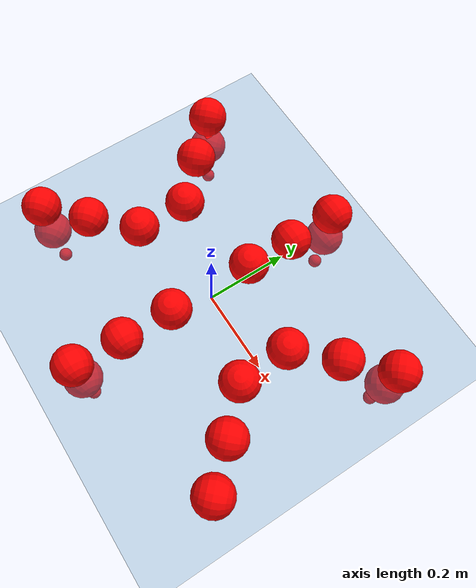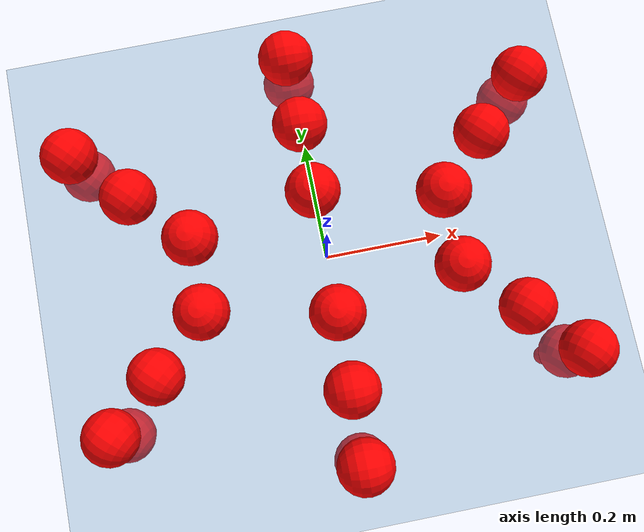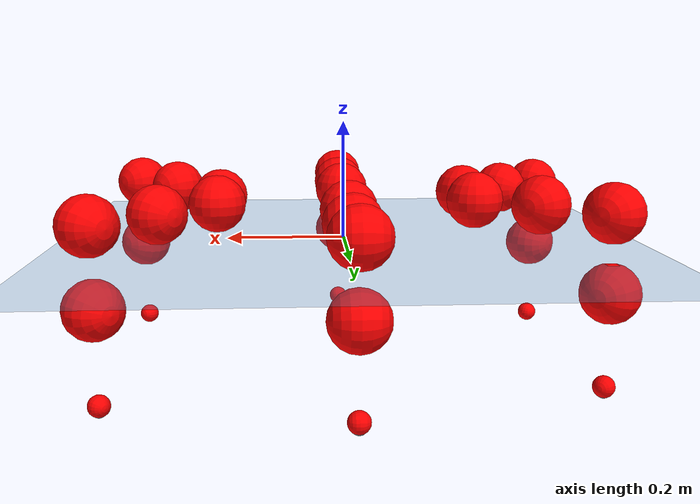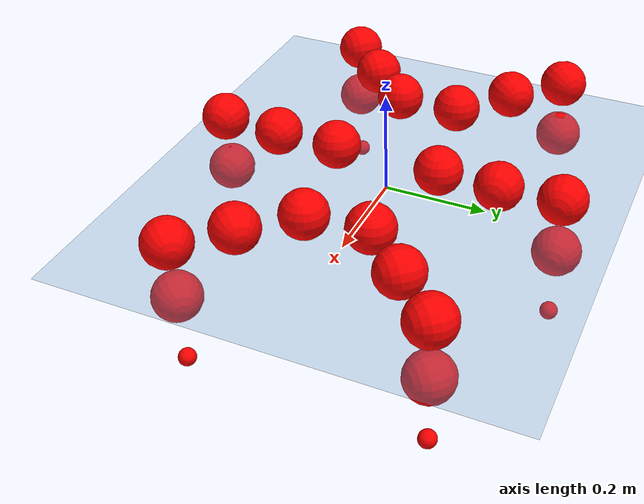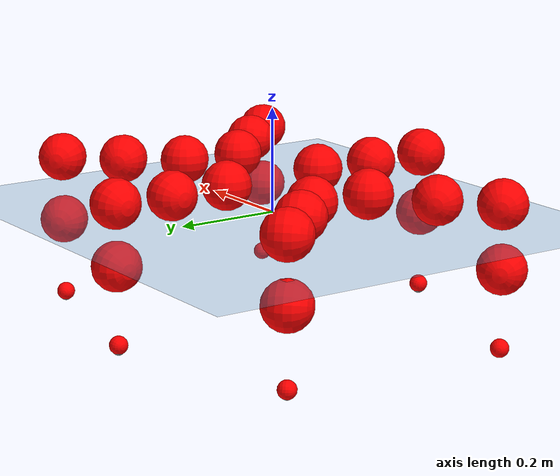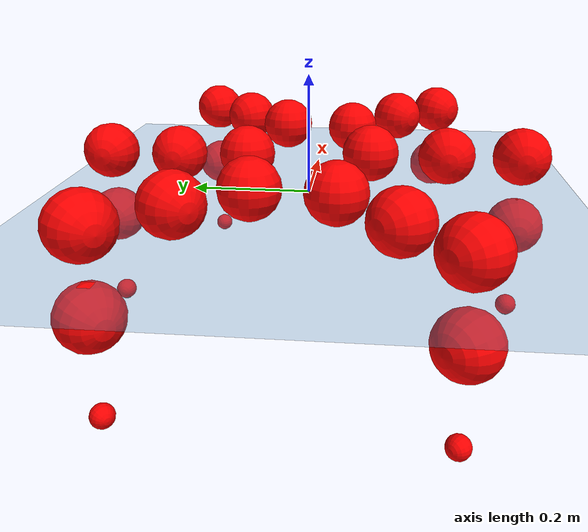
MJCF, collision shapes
<mujoco model="Golem">
  <compiler angle="radian" assetdir="assets" balanceinertia="true" inertiafromgeom="false"/>

  <option timestep="0.005" density="1.2" viscosity="2e-05"/>

  <size nkey="1"/>

  <visual>
    <quality shadowsize="8192"/>
    <map shadowclip="0.5"/>
  </visual>

  <default>
    <default class="/">
      <joint armature="0.01" damping="0.01" frictionloss="0.01"/>
      <geom contype="0" conaffinity="0" group="1" solref="-1000 -80"/>
      <site size="0.01 0.005 0.005" group="5"/>
      <general forcelimited="true" biastype="affine" gainprm="25" biasprm="0 -25 -0.5"/>
      <default class="visual">
        <geom type="mesh" group="2"/>
      </default>
      <default class="collision">
        <geom group="3"/>
      </default>
      <default class="foot">
        <geom size="0.01 0 0" condim="6" group="4" priority="1" solimp="0.015 1 0.01"/>
      </default>
      <default class="reward_collision_sphere">
        <geom group="5" rgba="1 0 0 1"/>
      </default>
    </default>
  </default>

  <asset>
    <texture type="skybox" colorspace="auto" name="//unnamed_texture_0" builtin="gradient" rgb1="0.95 0.95 0.95" rgb2="0.95 0.95 0.95" width="100" height="600"/>
    <texture type="2d" colorspace="auto" name="texplane" builtin="checker" rgb1="0.345 0.575 0.748" rgb2="0.345 0.575 0.748" markrgb="1 1 1" width="512" height="512"/>
    <material name="MatPlane" class="/" texture="texplane" texuniform="true" texrepeat="2 2" specular="0.9"/>
    <mesh name="body" class="/" file="body.stl" scale="0.001 0.001 0.001"/>
    <mesh name="coxa" class="/" file="coxa.stl" scale="0.001 0.001 0.001"/>
    <mesh name="femur" class="/" file="femur.stl" scale="0.001 0.001 0.001"/>
    <mesh name="tibia" class="/" file="tibia.stl" scale="0.001 0.001 0.001"/>
    <mesh name="tarsus" class="/" file="tarsus.stl" scale="0.001 0.001 0.001"/>
  </asset>

  <worldbody>
    <geom name="floor" class="/" size="100 100 0.125" type="plane" group="0" material="MatPlane"/>
    <light name="toplight_shadow" class="/" pos="0 0 5" dir="0.0990148 0.0990148 -0.990148" type="directional" ambient="0.04 0.04 0.04" diffuse="0.55 0.55 0.55" specular="0.12 0.12 0.12"/>
    <light name="toplight_fill" class="/" pos="0 0 5" dir="0.0990148 0.0990148 -0.990148" type="directional" castshadow="false" ambient="0.04 0.04 0.04" diffuse="0.3 0.3 0.3" specular="0.08 0.08 0.08"/>
    <body name="trunk" pos="-0.00270393 0.00123153 0.00162694" quat="1 6.41601e-05 5.38445e-05 -4.6548e-05">
      <inertial pos="0.00291259 0.00188314 -0.00433814" quat="0.999998 -0.00175062 7.79387e-05 -8.15017e-05" mass="6.21829" diaginertia="0.0510826 0.017906 0.0112904"/>
      <joint name="//unnamed_joint_0" type="free"/>
      <geom name="//unnamed_geom_1" class="/" pos="0 0 0.0654153" quat="1 0 0 0" type="mesh" rgba="0.9 0.9 0.9 1" mesh="body"/>
      <site name="imu" class="/" pos="0.1701 -0.00780288 0.115428" size="0.0117249"/>
      <camera name="track" class="/" pos="0 -2.22433 0" quat="0.707107 0.707107 0 0" mode="trackcom"/>
      <camera name="ego_camera" class="/" pos="0.179816 0 0.102211" quat="-0.5 -0.5 0.5 0.5"/>
      <body name="coxa_RR" pos="-0.245175 -0.0912411 0.0686065" quat="0.3827 5.1087e-05 -1.55243e-05 -0.923873">
        <inertial pos="0.000760589 0.0033197 -0.00221766" quat="0.999999 -7.5462e-05 -0.00126813 -0.000347348" mass="0.345286" diaginertia="0.0518256 0.0174547 0.0115081"/>
        <joint name="coxa_joint_RR" class="/" pos="0 0 0" axis="-0.00771222 0.00465082 -0.999959" stiffness="0.0154603" range="-3.13454 3.12831" armature="0.012294" damping="0" frictionloss="0.0116864"/>
        <geom name="//unnamed_geom_2" class="/" type="mesh" rgba="0.2 0.2 0.2 1" mesh="coxa"/>
        <geom name="//unnamed_geom_3" class="reward_collision_sphere" size="0.0468996" pos="-0.0414959 0 0"/>
        <body name="femur_RR" pos="0.0841243 -0.00137143 -0.00546874" quat="0.49959 -0.500185 0.500534 0.499691">
          <inertial pos="-0.00200308 -0.00248265 0.000564528" quat="0.999913 -0.00940492 -0.00627483 0.00678158" mass="0.319228" diaginertia="0.0501476 0.0173813 0.0104701"/>
          <joint name="femur_joint_RR" class="/" pos="0 0 0" axis="-0.0120047 -0.00769311 -0.999898" stiffness="0.0114336" range="-3.11028 3.13081" armature="0.0101929" damping="0" frictionloss="0.0111525"/>
          <geom name="//unnamed_geom_4" class="/" type="mesh" rgba="0.9 0.9 0.9 1" mesh="femur"/>
          <geom name="//unnamed_geom_5" class="reward_collision_sphere" size="0.0468996"/>
          <body name="tibia_RR" pos="0.00123061 -0.117739 -0.00339722" quat="-0.000863136 0.999999 -0.000370828 -0.0012794">
            <inertial pos="0.00147864 -0.00239175 0.000361295" quat="0.999997 -0.00112581 0.00148599 -0.00136519" mass="0.316008" diaginertia="0.0491317 0.0162142 0.0108596"/>
            <joint name="tibia_joint_RR" class="/" pos="0 0 0" axis="-0.00104578 -0.00690302 0.999976" range="-3.09576 3.15989" armature="0.0104789" damping="0.00246933" frictionloss="0.0116794"/>
            <geom name="//unnamed_geom_6" class="/" type="mesh" rgba="0.2 0.2 0.2 1" mesh="tibia"/>
            <geom name="//unnamed_geom_7" class="reward_collision_sphere" size="0.0468996"/>
            <body name="tarsus_RR" pos="0.121355 0.00131299 -0.00136249" quat="1 8.37164e-05 -0.000109319 0.000221106">
              <inertial pos="0.081977 0.000792214 0.00215265" quat="0.511116 0.495216 0.497764 0.495734" mass="0.317806" diaginertia="0.0517889 0.0172914 0.0109119"/>
              <joint name="tarsus_joint_RR" class="/" pos="0 0 0" axis="0.00261916 0.00324889 0.999991" stiffness="0.00265384" range="-3.11124 3.15532" armature="0.0101813" damping="0.0445417" frictionloss="0.0105648"/>
              <geom name="//unnamed_geom_8" class="/" type="mesh" rgba="0.9 0.9 0.9 1" mesh="tarsus"/>
              <geom name="foot_1" class="foot" size="0.0114793" pos="0.154918 0 0" quat="0 -0.707107 0 0.707107"/>
              <geom name="//unnamed_geom_10" class="reward_collision_sphere" size="0.0468996"/>
              <geom name="//unnamed_geom_11" class="reward_collision_sphere" size="0.0175874" pos="0.148694 0 0"/>
              <site name="foot_1" class="foot" pos="0.154918 0 0" quat="0 -0.707107 0 0.707107" size="0.0117249"/>
            </body>
          </body>
        </body>
      </body>
      <body name="coxa_RM" pos="0.000343003 -0.146559 0.0692596" quat="0.70729 -3.76694e-05 0.000473068 -0.706924">
        <inertial pos="0.00012121 0.000438617 -0.00202225" quat="0.999944 -0.00824364 0.00614397 -0.00266778" mass="0.313213" diaginertia="0.0495276 0.0176505 0.0112318"/>
        <joint name="coxa_joint_RM" class="/" pos="0 0 0" axis="-0.00509529 -0.0101467 -0.999936" range="-3.18937 3.18097" armature="0.0123314" damping="0.0137748" frictionloss="0.0142257"/>
        <geom name="//unnamed_geom_12" class="/" type="mesh" rgba="0.2 0.2 0.2 1" mesh="coxa"/>
        <geom name="//unnamed_geom_13" class="reward_collision_sphere" size="0.0468996" pos="-0.0414959 0 0"/>
        <body name="femur_RM" pos="0.0845188 -0.00108973 -0.0013063" quat="0.500348 -0.499652 0.50073 0.499269">
          <inertial pos="0.00251091 -0.00243741 0.00010995" quat="0.999918 -0.00943159 0.00667351 0.00544955" mass="0.309103" diaginertia="0.0483812 0.0164561 0.0105696"/>
          <joint name="femur_joint_RM" class="/" pos="0 0 0" axis="0.000435141 0.00595537 -0.999982" range="-3.12042 3.14372" armature="0.010503" damping="0.0123983" frictionloss="0.0116629"/>
          <geom name="//unnamed_geom_14" class="/" type="mesh" rgba="0.9 0.9 0.9 1" mesh="femur"/>
          <geom name="//unnamed_geom_15" class="reward_collision_sphere" size="0.0468996"/>
          <body name="tibia_RM" pos="-0.00280193 -0.120977 -0.00318245" quat="1.32736e-05 1 5.21389e-05 -6.15293e-05">
            <inertial pos="0.000555264 0.0031941 -0.000454536" quat="0.999963 -0.00157169 -0.0074927 0.00388174" mass="0.317978" diaginertia="0.0495278 0.0157697 0.0105294"/>
            <joint name="tibia_joint_RM" class="/" pos="0 0 0" axis="-0.000120662 0.00117294 0.999999" stiffness="0.000636419" range="-3.10486 3.05499" armature="0.0117964" damping="0.0179121" frictionloss="0.0132115"/>
            <geom name="//unnamed_geom_16" class="/" type="mesh" rgba="0.2 0.2 0.2 1" mesh="tibia"/>
            <geom name="//unnamed_geom_17" class="reward_collision_sphere" size="0.0468996"/>
            <body name="tarsus_RM" pos="0.119874 -0.00133809 0.000877163" quat="1 -0.00010403 -5.97361e-05 0.000182338">
              <inertial pos="0.0861272 -0.000502332 -8.39484e-05" quat="0.506597 0.507545 0.496189 0.489442" mass="0.308877" diaginertia="0.0513144 0.0166698 0.0111579"/>
              <joint name="tarsus_joint_RM" class="/" pos="0 0 0" axis="-0.00057474 -0.000900677 0.999999" range="-3.12145 3.08536" armature="0.0130574" damping="0" frictionloss="0.0122539"/>
              <geom name="//unnamed_geom_18" class="/" type="mesh" rgba="0.9 0.9 0.9 1" mesh="tarsus"/>
              <geom name="foot_2" class="foot" size="0.0128699" pos="0.154918 0 0" quat="0 -0.707107 0 0.707107"/>
              <geom name="//unnamed_geom_20" class="reward_collision_sphere" size="0.0468996"/>
              <geom name="//unnamed_geom_21" class="reward_collision_sphere" size="0.0175874" pos="0.148694 0 0"/>
              <site name="foot_2" class="foot" pos="0.154918 0 0" quat="0 -0.707107 0 0.707107" size="0.0117249"/>
            </body>
          </body>
        </body>
      </body>
      <body name="coxa_RF" pos="0.24692 -0.0953837 0.0637215" quat="0.924201 -7.94812e-05 -0.000144778 -0.381907">
        <inertial pos="-0.0024382 0.00158902 -0.00013318" quat="0.999998 -0.000923038 -0.00187355 3.4597e-05" mass="0.329611" diaginertia="0.0507754 0.0179791 0.0110948"/>
        <joint name="coxa_joint_RF" class="/" pos="0 0 0" axis="0.00123823 0.00405536 -0.999991" range="-3.14451 3.19042" armature="0.0110839" damping="0.0321289" frictionloss="0.0120504"/>
        <geom name="//unnamed_geom_22" class="/" type="mesh" rgba="0.2 0.2 0.2 1" mesh="coxa"/>
        <geom name="//unnamed_geom_23" class="reward_collision_sphere" size="0.0468996" pos="-0.0414959 0 0"/>
        <body name="femur_RF" pos="0.0826344 -0.00106651 0.00500434" quat="0.500907 -0.498964 0.500024 0.500103">
          <inertial pos="0.00237652 -0.000846061 3.45655e-05" quat="0.999936 -0.00986171 -0.00404865 0.00384103" mass="0.315801" diaginertia="0.0505999 0.016361 0.0105832"/>
          <joint name="femur_joint_RF" class="/" pos="0 0 0" axis="-0.00183176 -0.00141554 -0.999997" range="-3.0798 3.19127" armature="0.0125101" damping="0.0143262" frictionloss="0.0115023"/>
          <geom name="//unnamed_geom_24" class="/" type="mesh" rgba="0.9 0.9 0.9 1" mesh="femur"/>
          <geom name="//unnamed_geom_25" class="reward_collision_sphere" size="0.0468996"/>
          <body name="tibia_RF" pos="0.000627763 -0.1166 -0.00399926" quat="-0.0001002 1 5.45535e-05 3.8865e-05">
            <inertial pos="0.0035 -0.000144612 -0.00257803" quat="0.999999 0.000206663 0.000521816 0.000837649" mass="0.323366" diaginertia="0.0513895 0.0177512 0.011559"/>
            <joint name="tibia_joint_RF" class="/" pos="0 0 0" axis="0.0155678 -9.96239e-06 0.999879" stiffness="0.00627909" range="-3.19203 3.20086" armature="0.0103802" damping="0.0142638" frictionloss="0.0117805"/>
            <geom name="//unnamed_geom_26" class="/" type="mesh" rgba="0.2 0.2 0.2 1" mesh="tibia"/>
            <geom name="//unnamed_geom_27" class="reward_collision_sphere" size="0.0468996"/>
            <body name="tarsus_RF" pos="0.119956 -0.00264171 -0.000812881" quat="0.999999 0.000488191 0.000522728 -0.000993162">
              <inertial pos="0.0844637 0.00246214 -0.000518034" quat="0.499661 0.499802 0.500221 0.500316" mass="0.318892" diaginertia="0.0521835 0.0165489 0.0113684"/>
              <joint name="tarsus_joint_RF" class="/" pos="0 0 0" axis="-0.00343264 -0.00446089 0.999984" range="-3.18879 3.08768" armature="0.0123514" damping="0.00485921" frictionloss="0.0106584"/>
              <geom name="//unnamed_geom_28" class="/" type="mesh" rgba="0.9 0.9 0.9 1" mesh="tarsus"/>
              <geom name="foot_3" class="foot" size="0.0115777" pos="0.154918 0 0" quat="0 -0.707107 0 0.707107"/>
              <geom name="//unnamed_geom_30" class="reward_collision_sphere" size="0.0468996"/>
              <geom name="//unnamed_geom_31" class="reward_collision_sphere" size="0.0175874" pos="0.148694 0 0"/>
              <site name="foot_3" class="foot" pos="0.154918 0 0" quat="0 -0.707107 0 0.707107" size="0.0117249"/>
            </body>
          </body>
        </body>
      </body>
      <body name="coxa_LR" pos="-0.243043 0.091006 0.070796" quat="0.382587 8.84046e-06 0.000366419 0.92392">
        <inertial pos="0.00230331 0.00167364 0.00399962" quat="0.999878 -0.0152097 -0.0030838 0.00168687" mass="0.320831" diaginertia="0.0504591 0.0161666 0.0115395"/>
        <joint name="coxa_joint_LR" class="/" pos="0 0 0" axis="-0.00664289 -0.00975534 -0.99993" stiffness="0.00364944" range="-3.19154 3.10553" armature="0.0109592" damping="0" frictionloss="0.0120958"/>
        <geom name="//unnamed_geom_32" class="/" type="mesh" rgba="0.2 0.2 0.2 1" mesh="coxa"/>
        <geom name="//unnamed_geom_33" class="reward_collision_sphere" size="0.0468996" pos="-0.0414959 0 0"/>
        <body name="femur_LR" pos="0.0821801 0.00112229 0.00439646" quat="0.499973 -0.500257 0.499836 0.499933">
          <inertial pos="-0.00234763 0.000889549 -0.00104622" quat="0.999971 0.00413873 0.0055863 0.00301081" mass="0.322767" diaginertia="0.0496751 0.0167313 0.010966"/>
          <joint name="femur_joint_LR" class="/" pos="0 0 0" axis="0.00381391 -0.00418935 0.999984" stiffness="0.00611858" range="-3.08636 3.12806" armature="0.0130907" damping="0.00395981" frictionloss="0.0138022"/>
          <geom name="//unnamed_geom_34" class="/" type="mesh" rgba="0.9 0.9 0.9 1" mesh="femur"/>
          <geom name="//unnamed_geom_35" class="reward_collision_sphere" size="0.0468996"/>
          <body name="tibia_LR" pos="-8.64562e-05 -0.1223 -0.00162282" quat="0.000403021 0.999999 0.000685249 -0.000626476">
            <inertial pos="0.000177409 0.000365785 -7.37119e-05" quat="0.999946 0.00611149 0.00704784 -0.00448127" mass="0.340673" diaginertia="0.0519492 0.0168375 0.0112033"/>
            <joint name="tibia_joint_LR" class="/" pos="0 0 0" axis="-0.00629504 0.00193356 -0.999978" stiffness="0.0095582" range="-3.17438 3.15036" armature="0.0112863" damping="0" frictionloss="0.0121445"/>
            <geom name="//unnamed_geom_36" class="/" type="mesh" rgba="0.2 0.2 0.2 1" mesh="tibia"/>
            <geom name="//unnamed_geom_37" class="reward_collision_sphere" size="0.0468996"/>
            <body name="tarsus_LR" pos="0.123059 0.00146653 -0.000368192" quat="0.999999 -0.000501541 -0.00106635 -0.000386576">
              <inertial pos="0.0795162 0.000294898 0.00333592" quat="0.500139 0.502723 0.496963 0.500158" mass="0.32935" diaginertia="0.0517773 0.0175522 0.0114182"/>
              <joint name="tarsus_joint_LR" class="/" pos="0 0 0" axis="-0.00913897 -0.000183962 -0.999958" range="-3.11819 3.16069" armature="0.0123788" damping="0.00221046" frictionloss="0.0132252"/>
              <geom name="//unnamed_geom_38" class="/" type="mesh" rgba="0.9 0.9 0.9 1" mesh="tarsus"/>
              <geom name="foot_4" class="foot" size="0.012324" pos="0.154918 0 0" quat="0.707107 0 -0.707107 0"/>
              <geom name="//unnamed_geom_40" class="reward_collision_sphere" size="0.0468996"/>
              <geom name="//unnamed_geom_41" class="reward_collision_sphere" size="0.0175874" pos="0.148694 0 0"/>
              <site name="foot_4" class="foot" pos="0.154918 0 0" quat="0.707107 0 -0.707107 0" size="0.0117249"/>
            </body>
          </body>
        </body>
      </body>
      <body name="coxa_LM" pos="-0.000622712 0.144776 0.0642721" quat="0.706351 0.000511858 0.000275172 0.707862">
        <inertial pos="0.00304291 -0.00261997 0.00068997" quat="0.999992 0.000530756 0.00137919 0.00379017" mass="0.311448" diaginertia="0.048053 0.0168103 0.0107588"/>
        <joint name="coxa_joint_LM" class="/" pos="0 0 0" axis="0.0100566 -0.000211615 -0.999949" range="-3.15934 3.14878" armature="0.0129725" damping="0.0128618" frictionloss="0.0113889"/>
        <geom name="//unnamed_geom_42" class="/" type="mesh" rgba="0.2 0.2 0.2 1" mesh="coxa"/>
        <geom name="//unnamed_geom_43" class="reward_collision_sphere" size="0.0468996" pos="-0.0414959 0 0"/>
        <body name="femur_LM" pos="0.0765661 -0.000870088 -0.00309706" quat="0.500012 -0.500007 0.499968 0.500013">
          <inertial pos="0.00203085 0.00101508 -0.00372291" quat="0.999913 -0.00141312 0.0118697 0.00554565" mass="0.332328" diaginertia="0.0534246 0.0184941 0.0118804"/>
          <joint name="femur_joint_LM" class="/" pos="0 0 0" axis="-0.00363458 -0.0032765 0.999988" stiffness="0.00896143" range="-3.13559 3.15273" armature="0.0124541" damping="0.0130556" frictionloss="0.0113563"/>
          <geom name="//unnamed_geom_44" class="/" type="mesh" rgba="0.9 0.9 0.9 1" mesh="femur"/>
          <geom name="//unnamed_geom_45" class="reward_collision_sphere" size="0.0468996"/>
          <body name="tibia_LM" pos="-0.00227813 -0.119674 0.00154173" quat="0.00111621 0.999998 0.00144929 -0.000307944">
            <inertial pos="0.00197797 0.00347407 0.00254359" quat="0.999994 0.00189474 0.000335011 -0.00292954" mass="0.312108" diaginertia="0.0522533 0.01663 0.0115139"/>
            <joint name="tibia_joint_LM" class="/" pos="0 0 0" axis="0.00134809 0.00451809 -0.999989" range="-3.15703 3.18986" armature="0.0107068" damping="0.0281643" frictionloss="0.0107567"/>
            <geom name="//unnamed_geom_46" class="/" type="mesh" rgba="0.2 0.2 0.2 1" mesh="tibia"/>
            <geom name="//unnamed_geom_47" class="reward_collision_sphere" size="0.0468996"/>
            <body name="tarsus_LM" pos="0.116878 5.52052e-05 0.00085764" quat="0.999998 -0.0017915 -0.000293155 -0.00107648">
              <inertial pos="0.0824582 0.000647094 -0.00157868" quat="0.499944 0.499405 0.500083 0.500566" mass="0.339225" diaginertia="0.0513349 0.0172388 0.0116581"/>
              <joint name="tarsus_joint_LM" class="/" pos="0 0 0" axis="-0.000745437 -0.00103671 -0.999999" stiffness="0.0192135" range="-3.21262 3.18802" armature="0.0106709" damping="0.0281437" frictionloss="0.0131232"/>
              <geom name="//unnamed_geom_48" class="/" type="mesh" rgba="0.9 0.9 0.9 1" mesh="tarsus"/>
              <geom name="foot_5" class="foot" size="0.0129407" pos="0.154918 0 0" quat="0.707107 0 -0.707107 0"/>
              <geom name="//unnamed_geom_50" class="reward_collision_sphere" size="0.0468996"/>
              <geom name="//unnamed_geom_51" class="reward_collision_sphere" size="0.0175874" pos="0.148694 0 0"/>
              <site name="foot_5" class="foot" pos="0.154918 0 0" quat="0.707107 0 -0.707107 0" size="0.0117249"/>
            </body>
          </body>
        </body>
      </body>
      <body name="coxa_LF" pos="0.24262 0.0900283 0.068273" quat="0.9238 -0.000163285 0.000371981 0.382875">
        <inertial pos="-3.90921e-05 0.000819047 -0.00236199" quat="0.999998 -0.00185344 -0.000644248 -0.000668702" mass="0.328623" diaginertia="0.052759 0.0174473 0.0113056"/>
        <joint name="coxa_joint_LF" class="/" pos="0 0 0" axis="-0.00231752 -0.00320503 -0.999992" stiffness="0.0307881" range="-3.18413 3.06675" armature="0.0107843" damping="0.0299668" frictionloss="0.011378"/>
        <geom name="//unnamed_geom_52" class="/" type="mesh" rgba="0.2 0.2 0.2 1" mesh="coxa"/>
        <geom name="//unnamed_geom_53" class="reward_collision_sphere" size="0.0468996" pos="-0.0414959 0 0"/>
        <body name="femur_LF" pos="0.0807665 0.0025524 -0.00272048" quat="0.500682 -0.500478 0.499328 0.499511">
          <inertial pos="-0.00337343 0.000120622 0.000479379" quat="0.999914 -0.01016 0.00107772 0.0082538" mass="0.302952" diaginertia="0.04914 0.0166268 0.0106709"/>
          <joint name="femur_joint_LF" class="/" pos="0 0 0" axis="0.000505337 0.000923171 0.999999" stiffness="0.00151975" range="-3.12022 3.18647" armature="0.0108698" damping="0" frictionloss="0.0102009"/>
          <geom name="//unnamed_geom_54" class="/" type="mesh" rgba="0.9 0.9 0.9 1" mesh="femur"/>
          <geom name="//unnamed_geom_55" class="reward_collision_sphere" size="0.0468996"/>
          <body name="tibia_LF" pos="0.00133506 -0.122845 0.00071967" quat="0.00047527 1 4.26529e-05 0.000162419">
            <inertial pos="-0.000144436 -1.47897e-05 0.00223197" quat="0.999913 -0.0118059 -0.00368482 0.00464997" mass="0.312576" diaginertia="0.0487182 0.0171058 0.0110923"/>
            <joint name="tibia_joint_LF" class="/" pos="0 0 0" axis="-0.00642048 -0.00287229 -0.999975" range="-3.14794 3.15503" armature="0.0110807" damping="0.0067755" frictionloss="0.012791"/>
            <geom name="//unnamed_geom_56" class="/" type="mesh" rgba="0.2 0.2 0.2 1" mesh="tibia"/>
            <geom name="//unnamed_geom_57" class="reward_collision_sphere" size="0.0468996"/>
            <body name="tarsus_LF" pos="0.125465 -0.000803864 -0.00153889" quat="0.999999 0.000760367 -0.000629064 0.00088302">
              <inertial pos="0.0849329 0.000897793 -0.00194323" quat="0.499941 0.499547 0.500044 0.500468" mass="0.339777" diaginertia="0.0527722 0.0174444 0.011793"/>
              <joint name="tarsus_joint_LF" class="/" pos="0 0 0" axis="0.00946782 -0.00268536 -0.999952" stiffness="0.0151915" range="-3.13314 3.17721" armature="0.0118895" damping="0.0282714" frictionloss="0.0113193"/>
              <geom name="//unnamed_geom_58" class="/" type="mesh" rgba="0.9 0.9 0.9 1" mesh="tarsus"/>
              <geom name="foot_6" class="foot" size="0.0123945" pos="0.154918 0 0" quat="0.707107 0 -0.707107 0"/>
              <geom name="//unnamed_geom_60" class="reward_collision_sphere" size="0.0468996"/>
              <geom name="//unnamed_geom_61" class="reward_collision_sphere" size="0.0175874" pos="0.148694 0 0"/>
              <site name="foot_6" class="foot" pos="0.154918 0 0" quat="0.707107 0 -0.707107 0" size="0.0117249"/>
            </body>
          </body>
        </body>
      </body>
    </body>
  </worldbody>

  <contact>
    <pair class="/" geom1="floor" geom2="foot_1" name="//unnamed_contact_0"/>
    <pair class="/" geom1="floor" geom2="foot_2" name="//unnamed_contact_1"/>
    <pair class="/" geom1="floor" geom2="foot_3" name="//unnamed_contact_2"/>
    <pair class="/" geom1="floor" geom2="foot_4" name="//unnamed_contact_3"/>
    <pair class="/" geom1="floor" geom2="foot_5" name="//unnamed_contact_4"/>
    <pair class="/" geom1="floor" geom2="foot_6" name="//unnamed_contact_5"/>
  </contact>

  <actuator>
    <general name="coxa_joint_RR" class="/" joint="coxa_joint_RR" forcerange="-8.97698 8.97698" gainprm="28.1851" biasprm="0 -28.1851 -0.563088"/>
    <general name="femur_joint_RR" class="/" joint="femur_joint_RR" forcerange="-8.44929 8.44929" gainprm="28.1851" biasprm="0 -28.1851 -0.563088"/>
    <general name="tibia_joint_RR" class="/" joint="tibia_joint_RR" forcerange="-8.28857 8.28857" gainprm="28.1851" biasprm="0 -28.1851 -0.563088"/>
    <general name="tarsus_joint_RR" class="/" joint="tarsus_joint_RR" forcerange="-8.49141 8.49141" gainprm="28.1851" biasprm="0 -28.1851 -0.563088"/>
    <general name="coxa_joint_RM" class="/" joint="coxa_joint_RM" forcerange="-9.55829 9.55829" gainprm="28.1851" biasprm="0 -28.1851 -0.563088"/>
    <general name="femur_joint_RM" class="/" joint="femur_joint_RM" forcerange="-7.79407 7.79407" gainprm="28.1851" biasprm="0 -28.1851 -0.563088"/>
    <general name="tibia_joint_RM" class="/" joint="tibia_joint_RM" forcerange="-8.22749 8.22749" gainprm="28.1851" biasprm="0 -28.1851 -0.563088"/>
    <general name="tarsus_joint_RM" class="/" joint="tarsus_joint_RM" forcerange="-8.91782 8.91782" gainprm="28.1851" biasprm="0 -28.1851 -0.563088"/>
    <general name="coxa_joint_RF" class="/" joint="coxa_joint_RF" forcerange="-9.32684 9.32684" gainprm="28.1851" biasprm="0 -28.1851 -0.563088"/>
    <general name="femur_joint_RF" class="/" joint="femur_joint_RF" forcerange="-8.06751 8.06751" gainprm="28.1851" biasprm="0 -28.1851 -0.563088"/>
    <general name="tibia_joint_RF" class="/" joint="tibia_joint_RF" forcerange="-9.71203 9.71203" gainprm="28.1851" biasprm="0 -28.1851 -0.563088"/>
    <general name="tarsus_joint_RF" class="/" joint="tarsus_joint_RF" forcerange="-9.11969 9.11969" gainprm="28.1851" biasprm="0 -28.1851 -0.563088"/>
    <general name="coxa_joint_LR" class="/" joint="coxa_joint_LR" forcerange="-8.49974 8.49974" gainprm="28.1851" biasprm="0 -28.1851 -0.563088"/>
    <general name="femur_joint_LR" class="/" joint="femur_joint_LR" forcerange="-8.55767 8.55767" gainprm="28.1851" biasprm="0 -28.1851 -0.563088"/>
    <general name="tibia_joint_LR" class="/" joint="tibia_joint_LR" forcerange="-8.56485 8.56485" gainprm="28.1851" biasprm="0 -28.1851 -0.563088"/>
    <general name="tarsus_joint_LR" class="/" joint="tarsus_joint_LR" forcerange="-9.37354 9.37354" gainprm="28.1851" biasprm="0 -28.1851 -0.563088"/>
    <general name="coxa_joint_LM" class="/" joint="coxa_joint_LM" forcerange="-8.2713 8.2713" gainprm="28.1851" biasprm="0 -28.1851 -0.563088"/>
    <general name="femur_joint_LM" class="/" joint="femur_joint_LM" forcerange="-8.50819 8.50819" gainprm="28.1851" biasprm="0 -28.1851 -0.563088"/>
    <general name="tibia_joint_LM" class="/" joint="tibia_joint_LM" forcerange="-8.24774 8.24774" gainprm="28.1851" biasprm="0 -28.1851 -0.563088"/>
    <general name="tarsus_joint_LM" class="/" joint="tarsus_joint_LM" forcerange="-8.58238 8.58238" gainprm="28.1851" biasprm="0 -28.1851 -0.563088"/>
    <general name="coxa_joint_LF" class="/" joint="coxa_joint_LF" forcerange="-9.80307 9.80307" gainprm="28.1851" biasprm="0 -28.1851 -0.563088"/>
    <general name="femur_joint_LF" class="/" joint="femur_joint_LF" forcerange="-8.33603 8.33603" gainprm="28.1851" biasprm="0 -28.1851 -0.563088"/>
    <general name="tibia_joint_LF" class="/" joint="tibia_joint_LF" forcerange="-9.36351 9.36351" gainprm="28.1851" biasprm="0 -28.1851 -0.563088"/>
    <general name="tarsus_joint_LF" class="/" joint="tarsus_joint_LF" forcerange="-8.0782 8.0782" gainprm="28.1851" biasprm="0 -28.1851 -0.563088"/>
  </actuator>

  <sensor>
    <gyro site="imu" name="imu_angular_velocity"/>
    <velocimeter site="imu" name="imu_linear_velocity"/>
    <framelinvel objtype="site" objname="foot_1" name="foot_1_global_linear_velocity"/>
    <framelinvel objtype="site" objname="foot_2" name="foot_2_global_linear_velocity"/>
    <framelinvel objtype="site" objname="foot_3" name="foot_3_global_linear_velocity"/>
    <framelinvel objtype="site" objname="foot_4" name="foot_4_global_linear_velocity"/>
    <framelinvel objtype="site" objname="foot_5" name="foot_5_global_linear_velocity"/>
    <framelinvel objtype="site" objname="foot_6" name="foot_6_global_linear_velocity"/>
  </sensor>

  <keyframe>
    <key name="home" qpos="0 0 0.1457 1 0 0 0 0 0 0 0 0 0 0 0 0 0 0 0 0 0 0 0 0 0 0 0 0 0 0 0"/>
  </keyframe>
</mujoco>
